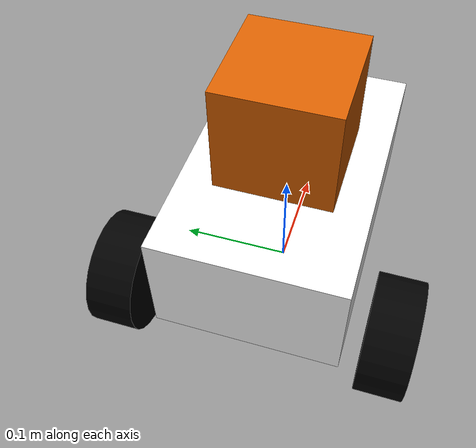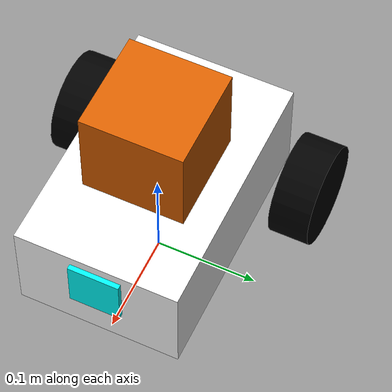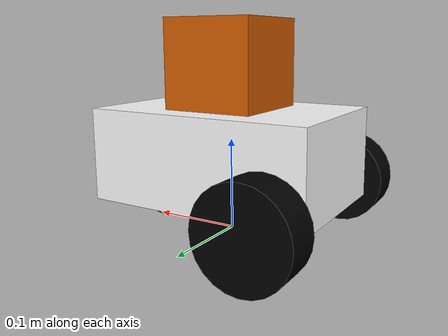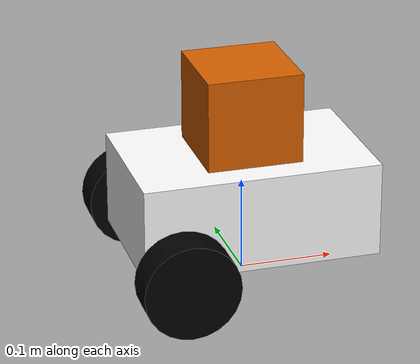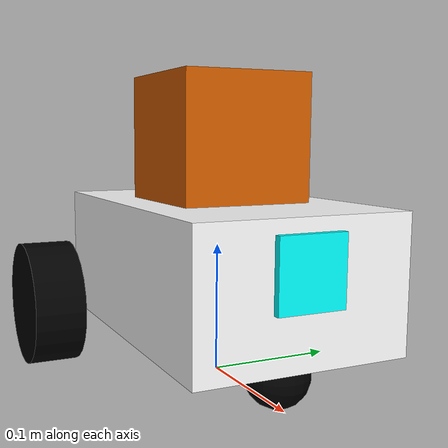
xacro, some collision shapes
<?xml version="1.0"?>
<robot name="earthfibo" xmlns:xacro="http://www.ros.org/wiki/xacro">
<link name="body">
<!--สร้างโครงหุ่น-->
    <visual>
          <geometry>
           <box size="0.25 0.16 0.10"/>
          </geometry>
         <origin rpy="0 0 0" xyz="0 0 0.085"/>
          <material name="white">
           <color rgba="1 1 1 1"/>
         </material>
    </visual>

    <inertial>
     <origin xyz="0.03 0 0.085" rpy="0 0 0"/>
     <mass value="6"/>
     <inertia ixx="0.1"  ixy="0"  ixz="0" iyy="0.1" iyz="0" izz="0.1" />
   </inertial>

   <collision>
     <origin rpy="0 0 0" xyz="0 0 0.085"/>
     <geometry>
         <box size="0.25 0.16 0.10"/>
     </geometry>
   </collision>

    </link>

     <!--สร้างล้อซ้าย-->
     <link name="left_wheel">
       <visual>
         <geometry>
           <cylinder length="0.04" radius="0.05"/>
         </geometry>
         <origin rpy="0 0 0" xyz="0 0 0"/>
         <material name="black">
           <color rgba="0 0 0 1"/>
         </material>
       </visual>

       <collision name="collision">
          <origin rpy="0 0 0" xyz="0 0 0"/>
          <geometry>
             <cylinder length="0.008" radius="0.046"/>
          </geometry>
        </collision>

        <inertial>
     <origin xyz="0 0 0" rpy="0 0 0"/>
     <mass value="1"/>
     <inertia ixx="0.1"  ixy="0"  ixz="0" iyy="0.1" iyz="0" izz="0.1" />
   </inertial>

     </link>

     <joint name="base_to_left_wheel" type="continuous">
       <parent link="body"/>
       <child link="left_wheel"/>
       <origin xyz="-0.09 0.115 0.046" rpy="1.5708 0 0"/>
       <axis xyz="0 0 -1"/>

        <limit effort ='10' velocity='20'/>
        <dynamics damping='0.3'/>
     </joint>

    <!--สร้างล้อขวา-->
    <link name="right_wheel">
       <visual>
         <geometry>
          <cylinder length="0.04" radius="0.05"/>
         </geometry>
         <origin rpy="0 0 0" xyz="0 0 0"/>
         <material name="black">
           <color rgba="0 0 0 1"/>
         </material>
       </visual>

        <collision name="collision">
          <origin rpy="0 0 0" xyz="0 0 0"/>
          <geometry>
             <cylinder length="0.008" radius="0.046"/>
          </geometry>
        </collision>

        <inertial>
     <origin xyz="0 0 0" rpy="0 0 0"/>
     <mass value="1"/>
     <inertia ixx="0.1"  ixy="0"  ixz="0" iyy="0.1" iyz="0" izz="0.1" />
   </inertial>

     </link>

     <joint name="base_to_right_wheel" type="continuous">
       <parent link="body"/>
       <child link="right_wheel"/>
       <origin xyz="-0.09 -0.115 0.046" rpy="-1.5708 0 0"/>
        <axis xyz="0 0 1"/>
        <limit effort ='10' velocity='20'/>
        <dynamics damping='0.3'/>
     </joint>

     <!--สร้างล้อหน้า-->
     <link name="fwheel">
       <visual>
         <geometry>
           <sphere radius="0.023"/>
         </geometry>
         <origin rpy="1.578 0 0" xyz="0 0 0"/>
         <material name="black">
           <color rgba="0 0 0 1"/>
         </material>
       </visual>
        <collision name="collision">
           <origin rpy="1.578 0 0" xyz="0 0 0"/>
          <geometry>
             <sphere radius="0.023"/>
          </geometry>
        </collision>
        <inertial>
     <origin xyz="0 0 0.05" rpy="0 0 0"/>
     <mass value="1"/>
     <inertia ixx="0.3"  ixy="0"  ixz="0" iyy="0.3" iyz="0" izz="0.3" />
   </inertial>
     </link>

     <joint name="base_to_fwheel" type="continuous">
       <parent link="body"/>
       <child link="fwheel"/>
       <origin xyz="0.09 0 0.023" rpy="0 0 0"/>
        <axis xyz="0 1 0"/>
     </joint>

   <!--สร้างกล้อง-->
  <joint name="camera_joint" type="fixed">

    <origin xyz="0.105 0 0.1" rpy="0 0 0" />
    <parent link="body"/>
    <child link="camera_link"/>
    <axis xyz="0 1 0"/>
  </joint>

  <!-- Camera -->
  <link name="camera_link">
    <collision>
      <origin xyz="0 0 0" rpy="0 0 0"/>
      <geometry>
    <box size="0.05 0.05 0.05"/>
      </geometry>
    </collision>

    <visual>
      <origin xyz="0 0 0" rpy="0 0 0"/>
      <geometry>
     <box size="0.05 0.05 0.05"/>
      </geometry>
       <material name="red">
       <color rgba="0 1.0 1.0 1.0"/>
     </material>
    </visual>

    <inertial>
      <mass value="1e-5" />
      <origin xyz="0 0 0" rpy="0 0 0"/>
      <inertia ixx="1e-6" ixy="0" ixz="0" iyy="1e-6" iyz="0" izz="1e-6" />
    </inertial>
  </link>

 <!-- camera -->
  <gazebo reference="camera_link">
    <sensor type="camera" name="camera1">
      <update_rate>30.0</update_rate>
      <camera name="head">
        <horizontal_fov>1.3962634</horizontal_fov>
        <image>
          <width>800</width>
          <height>800</height>
          <format>R8G8B8</format>
        </image>
        <clip>
          <near>0.02</near>
          <far>300</far>
        </clip>
        <noise>
          <type>gaussian</type>
          <!-- Noise is sampled independently per pixel on each frame.
               That pixel's noise value is added to each of its color
               channels, which at that point lie in the range [0,1]. -->
          <mean>0.0</mean>
          <stddev>0.007</stddev>
        </noise>
      </camera>
      <plugin name="camera_controller" filename="libgazebo_ros_camera.so">
        <alwaysOn>true</alwaysOn>
        <updateRate>0.0</updateRate>
        <cameraName>rrbot/camera1</cameraName>
        <imageTopicName>image_raw</imageTopicName>
        <cameraInfoTopicName>camera_info</cameraInfoTopicName>
        <frameName>camera_link</frameName>
        <hackBaseline>0.07</hackBaseline>
        <distortionK1>0.0</distortionK1>
        <distortionK2>0.0</distortionK2>
        <distortionK3>0.0</distortionK3>
        <distortionT1>0.0</distortionT1>
        <distortionT2>0.0</distortionT2>
      </plugin>
    </sensor>
  </gazebo>

  <joint name="hokuyo_joint" type="fixed">
    <axis xyz="0 0 1" />
    <origin xyz="0 0 0.18" rpy="0 0 0"/>
    <parent link="body"/>
    <child link="hokuyo_link"/>
  </joint>

  <!--สร้างlidar sensor-->
  <!-- Hokuyo Laser -->
  <link name="hokuyo_link">
    <collision>
       <origin xyz="0 0 0" rpy="0 0 0"/>
      <geometry>
    <box size="0.1 0.1 0.1"/>
      </geometry>
    </collision>

    <visual>
       <origin xyz="0 0 0" rpy="0 0 0"/>
      <geometry>
        <mesh filename="package://earth_description/meshes/hokuyo.dae"/>
      </geometry>
    </visual>

    <inertial>
      <mass value="1e-5" />
       <origin xyz="0 0 0" rpy="0 0 0"/>
      <inertia ixx="1e-6" ixy="0" ixz="0" iyy="1e-6" iyz="0" izz="1e-6" />
    </inertial>
  </link>

 <!-- hokuyo -->
  <gazebo reference="hokuyo_link">
    <sensor type="ray" name="head_hokuyo_sensor">
      <pose>0 0 0 0 0 0</pose>
      <visualize>true</visualize>
      <update_rate>40</update_rate>
      <ray>
        <scan>
          <horizontal>
            <samples>720</samples>
            <resolution>1</resolution>
            <min_angle>-1.570796</min_angle>
            <max_angle>1.570796</max_angle>
          </horizontal>
        </scan>
        <range>
          <min>0.10</min>
          <max>30.0</max>
          <resolution>0.01</resolution>
        </range>
        <noise>
          <type>gaussian</type>
          <mean>0.0</mean>
          <stddev>0.01</stddev>
        </noise>
      </ray>
      <plugin name="gazebo_ros_head_hokuyo_controller" filename="libgazebo_ros_laser.so">
        <topicName>/rrbot/laser/scan</topicName>
        <frameName>hokuyo_link</frameName>
      </plugin>
    </sensor>
  </gazebo>

<!--plugin controller-->
<gazebo>
  <plugin name="differential_drive_controller" filename="libgazebo_ros_diff_drive.so">

    <!-- Plugin update rate in Hz -->
    <updateRate>${1000}</updateRate>

    <!-- Name of left joint, defaults to `left_joint` -->
    <leftJoint>base_to_left_wheel</leftJoint>

    <!-- Name of right joint, defaults to `right_joint` -->
    <rightJoint>base_to_right_wheel</rightJoint>

    <!-- The distance from the center of one wheel to the other, in meters, defaults to 0.34 m -->
    <wheelSeparation>0.2</wheelSeparation>

    <!-- Diameter of the wheels, in meters, defaults to 0.15 m -->
    <wheelDiameter>0.1</wheelDiameter>

    <!-- Wheel acceleration, in rad/s^2, defaults to 0.0 rad/s^2 -->
    <wheelAcceleration>1.0</wheelAcceleration>

    <!-- Maximum torque which the wheels can produce, in Nm, defaults to 5 Nm -->
    <wheelTorque>20</wheelTorque>

    <!-- Topic to receive geometry_msgs/Twist message commands, defaults to `cmd_vel` -->
    <commandTopic>cmd_vel</commandTopic>

    <!-- Topic to publish nav_msgs/Odometry messages, defaults to `odom` -->
    <odometryTopic>odom</odometryTopic>

    <!-- Odometry frame, defaults to `odom` -->
    <odometryFrame>odom</odometryFrame>

    <!-- Robot frame to calculate odometry from, defaults to `base_footprint` -->
    <robotBaseFrame>base_footprint</robotBaseFrame>

    <!-- Odometry source, 0 for ENCODER, 1 for WORLD, defaults to WORLD -->
    <odometrySource>1</odometrySource>

    <!-- Set to true to publish transforms for the wheel links, defaults to false -->
    <publishWheelTF>true</publishWheelTF>

    <!-- Set to true to publish transforms for the odometry, defaults to true -->
    <publishOdom>true</publishOdom>

    <!-- Set to true to publish sensor_msgs/JointState on /joint_states for the wheel joints, defaults to false -->
    <publishWheelJointState>true</publishWheelJointState>

    <!-- Set to true to swap right and left wheels, defaults to true -->
    <legacyMode>false</legacyMode>
  </plugin>
</gazebo>

</robot>
